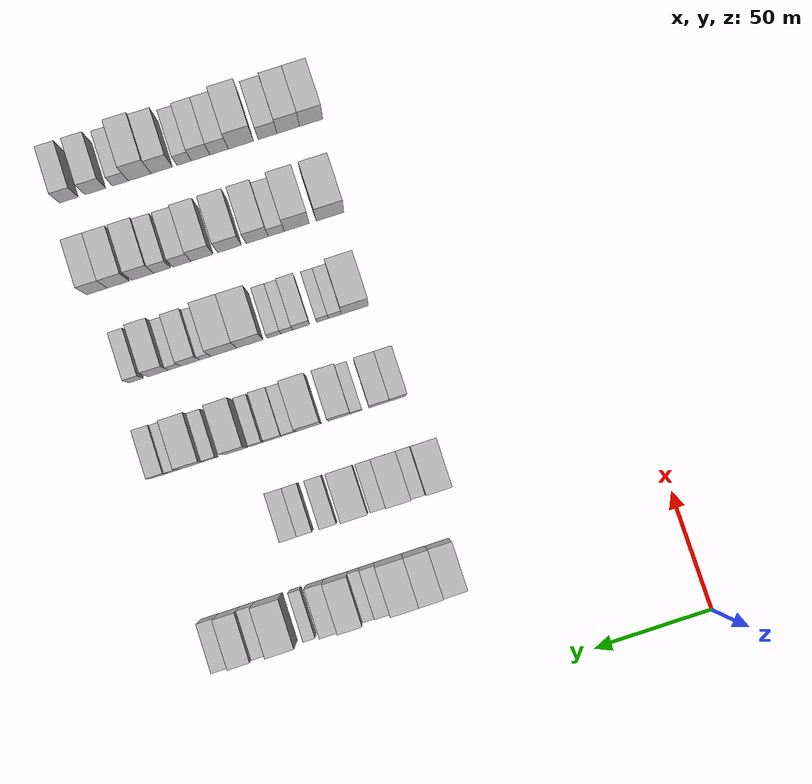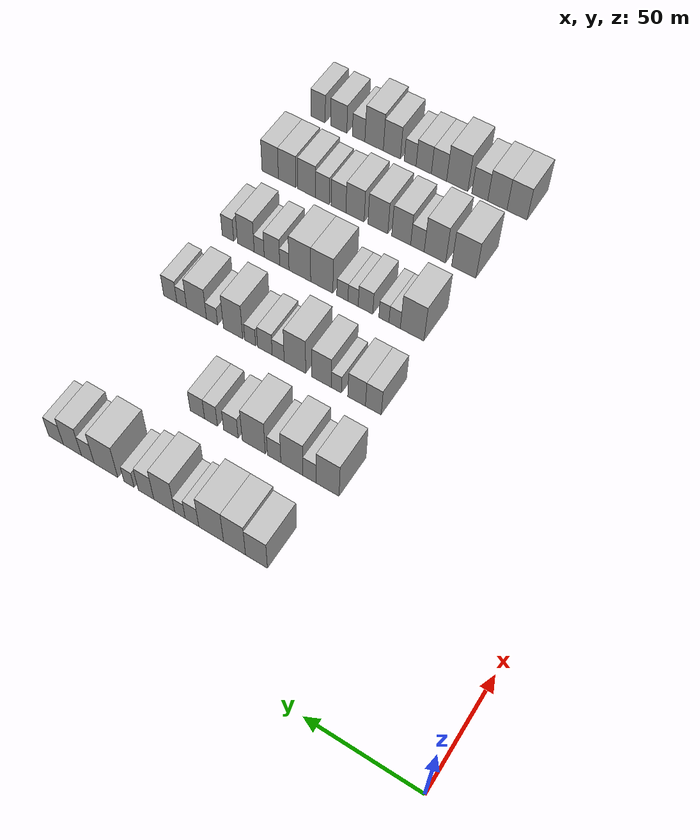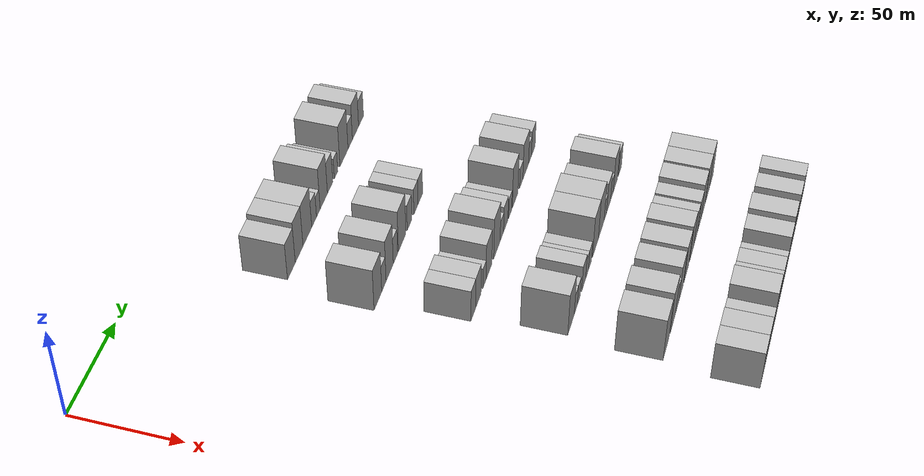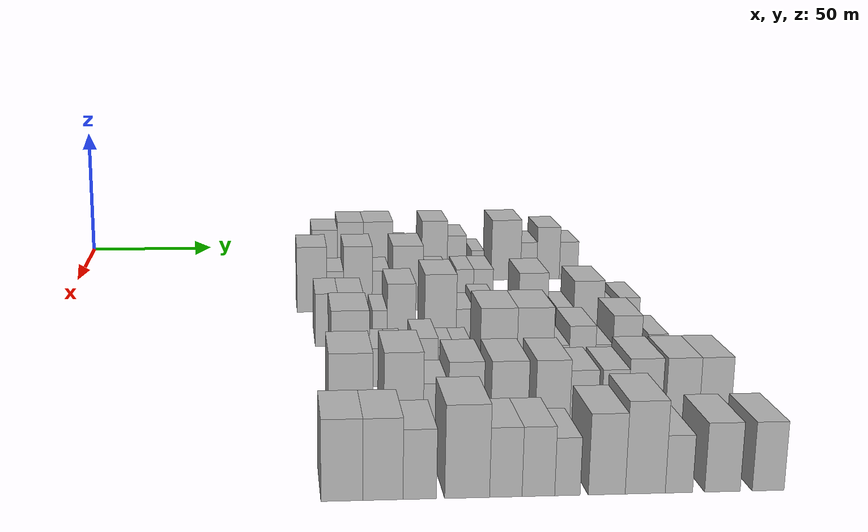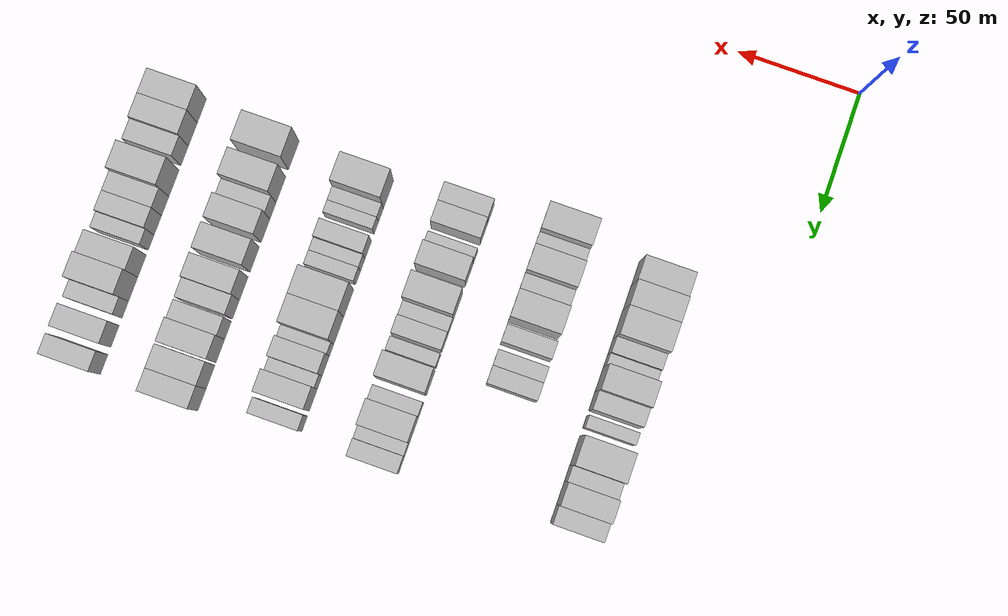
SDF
<sdf version="1.6">
 <world name="default">
  <model name="building_85">
   <static>1</static>
   <pose>50.0000 96.8803 0 0.000000 0.000000 0.000000</pose>
   <link name="link">
    <pose>0 0 10.50 0 0 0</pose>
    <collision name="collision"><geometry><box><size>20.0000 9.9742 21.0000</size></box></geometry></collision>
    <visual name="visual">
     <cast_shadows>0</cast_shadows>
     <geometry><box><size>20.0000 9.9742 21.0000</size></box></geometry>
     <material>
      <script>
       <uri>model://HANNAS_wall/materials/scripts</uri>
       <uri>model://HANNAS_wall/materials/textures</uri>
       <name>vrc/HANNAS_wall</name>
      </script>
     </material>
    </visual>
   </link>
  </model>
  <model name="building_86">
   <static>1</static>
   <pose>50.0000 106.9199 0 0.000000 0.000000 0.000000</pose>
   <link name="link">
    <pose>0 0 12.00 0 0 0</pose>
    <collision name="collision"><geometry><box><size>20.0000 10.1050 24.0000</size></box></geometry></collision>
    <visual name="visual">
     <cast_shadows>0</cast_shadows>
     <geometry><box><size>20.0000 10.1050 24.0000</size></box></geometry>
     <material>
      <script>
       <uri>model://HANNAS_wall/materials/scripts</uri>
       <uri>model://HANNAS_wall/materials/textures</uri>
       <name>vrc/HANNAS_wall</name>
      </script>
     </material>
    </visual>
   </link>
  </model>
  <model name="building_87">
   <static>1</static>
   <pose>50.0000 117.7359 0 0.000000 0.000000 0.000000</pose>
   <link name="link">
    <pose>0 0 12.00 0 0 0</pose>
    <collision name="collision"><geometry><box><size>20.0000 11.5272 24.0000</size></box></geometry></collision>
    <visual name="visual">
     <cast_shadows>0</cast_shadows>
     <geometry><box><size>20.0000 11.5272 24.0000</size></box></geometry>
     <material>
      <script>
       <uri>model://HANNAS_wall/materials/scripts</uri>
       <uri>model://HANNAS_wall/materials/textures</uri>
       <name>vrc/HANNAS_wall</name>
      </script>
     </material>
    </visual>
   </link>
  </model>
  <model name="building_88">
   <static>1</static>
   <pose>50.0000 126.7029 0 0.000000 0.000000 0.000000</pose>
   <link name="link">
    <pose>0 0 7.50 0 0 0</pose>
    <collision name="collision"><geometry><box><size>20.0000 6.4067 15.0000</size></box></geometry></collision>
    <visual name="visual">
     <cast_shadows>0</cast_shadows>
     <geometry><box><size>20.0000 6.4067 15.0000</size></box></geometry>
     <material>
      <script>
       <uri>model://HANNAS_wall/materials/scripts</uri>
       <uri>model://HANNAS_wall/materials/textures</uri>
       <name>vrc/HANNAS_wall</name>
      </script>
     </material>
    </visual>
   </link>
  </model>
  <model name="building_89">
   <static>1</static>
   <pose>50.0000 132.3894 0 0.000000 0.000000 0.000000</pose>
   <link name="link">
    <pose>0 0 6.00 0 0 0</pose>
    <collision name="collision"><geometry><box><size>20.0000 4.9663 12.0000</size></box></geometry></collision>
    <visual name="visual">
     <cast_shadows>0</cast_shadows>
     <geometry><box><size>20.0000 4.9663 12.0000</size></box></geometry>
     <material>
      <script>
       <uri>model://HANNAS_wall/materials/scripts</uri>
       <uri>model://HANNAS_wall/materials/textures</uri>
       <name>vrc/HANNAS_wall</name>
      </script>
     </material>
    </visual>
   </link>
  </model>
  <model name="building_90">
   <static>1</static>
   <pose>50.0000 139.8823 0 0.000000 0.000000 0.000000</pose>
   <link name="link">
    <pose>0 0 12.00 0 0 0</pose>
    <collision name="collision"><geometry><box><size>20.0000 10.0195 24.0000</size></box></geometry></collision>
    <visual name="visual">
     <cast_shadows>0</cast_shadows>
     <geometry><box><size>20.0000 10.0195 24.0000</size></box></geometry>
     <material>
      <script>
       <uri>model://HANNAS_wall/materials/scripts</uri>
       <uri>model://HANNAS_wall/materials/textures</uri>
       <name>vrc/HANNAS_wall</name>
      </script>
     </material>
    </visual>
   </link>
  </model>
  <model name="building_91">
   <static>1</static>
   <pose>50.0000 148.6498 0 0.000000 0.000000 0.000000</pose>
   <link name="link">
    <pose>0 0 9.00 0 0 0</pose>
    <collision name="collision"><geometry><box><size>20.0000 7.5154 18.0000</size></box></geometry></collision>
    <visual name="visual">
     <cast_shadows>0</cast_shadows>
     <geometry><box><size>20.0000 7.5154 18.0000</size></box></geometry>
     <material>
      <script>
       <uri>model://HANNAS_wall/materials/scripts</uri>
       <uri>model://HANNAS_wall/materials/textures</uri>
       <name>vrc/HANNAS_wall</name>
      </script>
     </material>
    </visual>
   </link>
  </model>
  <model name="building_92">
   <static>1</static>
   <pose>50.0000 156.8911 0 0.000000 0.000000 0.000000</pose>
   <link name="link">
    <pose>0 0 6.00 0 0 0</pose>
    <collision name="collision"><geometry><box><size>20.0000 4.9671 12.0000</size></box></geometry></collision>
    <visual name="visual">
     <cast_shadows>0</cast_shadows>
     <geometry><box><size>20.0000 4.9671 12.0000</size></box></geometry>
     <material>
      <script>
       <uri>model://HANNAS_wall/materials/scripts</uri>
       <uri>model://HANNAS_wall/materials/textures</uri>
       <name>vrc/HANNAS_wall</name>
      </script>
     </material>
    </visual>
   </link>
  </model>
  <model name="building_93">
   <static>1</static>
   <pose>50.0000 168.2172 0 0.000000 0.000000 0.000000</pose>
   <link name="link">
    <pose>0 0 12.00 0 0 0</pose>
    <collision name="collision"><geometry><box><size>20.0000 11.6851 24.0000</size></box></geometry></collision>
    <visual name="visual">
     <cast_shadows>0</cast_shadows>
     <geometry><box><size>20.0000 11.6851 24.0000</size></box></geometry>
     <material>
      <script>
       <uri>model://HANNAS_wall/materials/scripts</uri>
       <uri>model://HANNAS_wall/materials/textures</uri>
       <name>vrc/HANNAS_wall</name>
      </script>
     </material>
    </visual>
   </link>
  </model>
  <model name="building_94">
   <static>1</static>
   <pose>50.0000 177.2418 0 0.000000 0.000000 0.000000</pose>
   <link name="link">
    <pose>0 0 7.50 0 0 0</pose>
    <collision name="collision"><geometry><box><size>20.0000 6.3640 15.0000</size></box></geometry></collision>
    <visual name="visual">
     <cast_shadows>0</cast_shadows>
     <geometry><box><size>20.0000 6.3640 15.0000</size></box></geometry>
     <material>
      <script>
       <uri>model://HANNAS_wall/materials/scripts</uri>
       <uri>model://HANNAS_wall/materials/textures</uri>
       <name>vrc/HANNAS_wall</name>
      </script>
     </material>
    </visual>
   </link>
  </model>
  <model name="building_95">
   <static>1</static>
   <pose>50.0000 184.9630 0 0.000000 0.000000 0.000000</pose>
   <link name="link">
    <pose>0 0 10.50 0 0 0</pose>
    <collision name="collision"><geometry><box><size>20.0000 9.0785 21.0000</size></box></geometry></collision>
    <visual name="visual">
     <cast_shadows>0</cast_shadows>
     <geometry><box><size>20.0000 9.0785 21.0000</size></box></geometry>
     <material>
      <script>
       <uri>model://HANNAS_wall/materials/scripts</uri>
       <uri>model://HANNAS_wall/materials/textures</uri>
       <name>vrc/HANNAS_wall</name>
      </script>
     </material>
    </visual>
   </link>
  </model>
  <model name="building_96">
   <static>1</static>
   <pose>50.0000 193.1773 0 0.000000 0.000000 0.000000</pose>
   <link name="link">
    <pose>0 0 7.50 0 0 0</pose>
    <collision name="collision"><geometry><box><size>20.0000 7.3500 15.0000</size></box></geometry></collision>
    <visual name="visual">
     <cast_shadows>0</cast_shadows>
     <geometry><box><size>20.0000 7.3500 15.0000</size></box></geometry>
     <material>
      <script>
       <uri>model://HANNAS_wall/materials/scripts</uri>
       <uri>model://HANNAS_wall/materials/textures</uri>
       <name>vrc/HANNAS_wall</name>
      </script>
     </material>
    </visual>
   </link>
  </model>
  <model name="building_221">
   <static>1</static>
   <pose>90.0000 90.5699 0 0.000000 0.000000 0.000000</pose>
   <link name="link">
    <pose>0 0 12.00 0 0 0</pose>
    <collision name="collision"><geometry><box><size>20.0000 10.6653 24.0000</size></box></geometry></collision>
    <visual name="visual">
     <cast_shadows>0</cast_shadows>
     <geometry><box><size>20.0000 10.6653 24.0000</size></box></geometry>
     <material>
      <script>
       <uri>model://HANNAS_wall/materials/scripts</uri>
       <uri>model://HANNAS_wall/materials/textures</uri>
       <name>vrc/HANNAS_wall</name>
      </script>
     </material>
    </visual>
   </link>
  </model>
  <model name="building_222">
   <static>1</static>
   <pose>90.0000 98.9464 0 0.000000 0.000000 0.000000</pose>
   <link name="link">
    <pose>0 0 7.50 0 0 0</pose>
    <collision name="collision"><geometry><box><size>20.0000 6.0877 15.0000</size></box></geometry></collision>
    <visual name="visual">
     <cast_shadows>0</cast_shadows>
     <geometry><box><size>20.0000 6.0877 15.0000</size></box></geometry>
     <material>
      <script>
       <uri>model://HANNAS_wall/materials/scripts</uri>
       <uri>model://HANNAS_wall/materials/textures</uri>
       <name>vrc/HANNAS_wall</name>
      </script>
     </material>
    </visual>
   </link>
  </model>
  <model name="building_223">
   <static>1</static>
   <pose>90.0000 107.1614 0 0.000000 0.000000 0.000000</pose>
   <link name="link">
    <pose>0 0 12.00 0 0 0</pose>
    <collision name="collision"><geometry><box><size>20.0000 10.3423 24.0000</size></box></geometry></collision>
    <visual name="visual">
     <cast_shadows>0</cast_shadows>
     <geometry><box><size>20.0000 10.3423 24.0000</size></box></geometry>
     <material>
      <script>
       <uri>model://HANNAS_wall/materials/scripts</uri>
       <uri>model://HANNAS_wall/materials/textures</uri>
       <name>vrc/HANNAS_wall</name>
      </script>
     </material>
    </visual>
   </link>
  </model>
  <model name="building_224">
   <static>1</static>
   <pose>90.0000 115.5110 0 0.000000 0.000000 0.000000</pose>
   <link name="link">
    <pose>0 0 7.50 0 0 0</pose>
    <collision name="collision"><geometry><box><size>20.0000 6.3569 15.0000</size></box></geometry></collision>
    <visual name="visual">
     <cast_shadows>0</cast_shadows>
     <geometry><box><size>20.0000 6.3569 15.0000</size></box></geometry>
     <material>
      <script>
       <uri>model://HANNAS_wall/materials/scripts</uri>
       <uri>model://HANNAS_wall/materials/textures</uri>
       <name>vrc/HANNAS_wall</name>
      </script>
     </material>
    </visual>
   </link>
  </model>
  <model name="building_225">
   <static>1</static>
   <pose>90.0000 125.2080 0 0.000000 0.000000 0.000000</pose>
   <link name="link">
    <pose>0 0 12.00 0 0 0</pose>
    <collision name="collision"><geometry><box><size>20.0000 11.0372 24.0000</size></box></geometry></collision>
    <visual name="visual">
     <cast_shadows>0</cast_shadows>
     <geometry><box><size>20.0000 11.0372 24.0000</size></box></geometry>
     <material>
      <script>
       <uri>model://HANNAS_wall/materials/scripts</uri>
       <uri>model://HANNAS_wall/materials/textures</uri>
       <name>vrc/HANNAS_wall</name>
      </script>
     </material>
    </visual>
   </link>
  </model>
  <model name="building_226">
   <static>1</static>
   <pose>90.0000 136.2532 0 0.000000 0.000000 0.000000</pose>
   <link name="link">
    <pose>0 0 7.50 0 0 0</pose>
    <collision name="collision"><geometry><box><size>20.0000 7.0531 15.0000</size></box></geometry></collision>
    <visual name="visual">
     <cast_shadows>0</cast_shadows>
     <geometry><box><size>20.0000 7.0531 15.0000</size></box></geometry>
     <material>
      <script>
       <uri>model://HANNAS_wall/materials/scripts</uri>
       <uri>model://HANNAS_wall/materials/textures</uri>
       <name>vrc/HANNAS_wall</name>
      </script>
     </material>
    </visual>
   </link>
  </model>
  <model name="building_227">
   <static>1</static>
   <pose>90.0000 145.9290 0 0.000000 0.000000 0.000000</pose>
   <link name="link">
    <pose>0 0 7.50 0 0 0</pose>
    <collision name="collision"><geometry><box><size>20.0000 6.2985 15.0000</size></box></geometry></collision>
    <visual name="visual">
     <cast_shadows>0</cast_shadows>
     <geometry><box><size>20.0000 6.2985 15.0000</size></box></geometry>
     <material>
      <script>
       <uri>model://HANNAS_wall/materials/scripts</uri>
       <uri>model://HANNAS_wall/materials/textures</uri>
       <name>vrc/HANNAS_wall</name>
      </script>
     </material>
    </visual>
   </link>
  </model>
  <model name="building_228">
   <static>1</static>
   <pose>90.0000 152.6387 0 0.000000 0.000000 0.000000</pose>
   <link name="link">
    <pose>0 0 7.50 0 0 0</pose>
    <collision name="collision"><geometry><box><size>20.0000 7.1210 15.0000</size></box></geometry></collision>
    <visual name="visual">
     <cast_shadows>0</cast_shadows>
     <geometry><box><size>20.0000 7.1210 15.0000</size></box></geometry>
     <material>
      <script>
       <uri>model://HANNAS_wall/materials/scripts</uri>
       <uri>model://HANNAS_wall/materials/textures</uri>
       <name>vrc/HANNAS_wall</name>
      </script>
     </material>
    </visual>
   </link>
  </model>
  <model name="building_356">
   <static>1</static>
   <pose>130.0000 94.0886 0 0.000000 0.000000 0.000000</pose>
   <link name="link">
    <pose>0 0 9.00 0 0 0</pose>
    <collision name="collision"><geometry><box><size>20.0000 7.4451 18.0000</size></box></geometry></collision>
    <visual name="visual">
     <cast_shadows>0</cast_shadows>
     <geometry><box><size>20.0000 7.4451 18.0000</size></box></geometry>
     <material>
      <script>
       <uri>model://HANNAS_wall/materials/scripts</uri>
       <uri>model://HANNAS_wall/materials/textures</uri>
       <name>vrc/HANNAS_wall</name>
      </script>
     </material>
    </visual>
   </link>
  </model>
  <model name="building_357">
   <static>1</static>
   <pose>130.0000 102.0304 0 0.000000 0.000000 0.000000</pose>
   <link name="link">
    <pose>0 0 9.00 0 0 0</pose>
    <collision name="collision"><geometry><box><size>20.0000 8.4385 18.0000</size></box></geometry></collision>
    <visual name="visual">
     <cast_shadows>0</cast_shadows>
     <geometry><box><size>20.0000 8.4385 18.0000</size></box></geometry>
     <material>
      <script>
       <uri>model://HANNAS_wall/materials/scripts</uri>
       <uri>model://HANNAS_wall/materials/textures</uri>
       <name>vrc/HANNAS_wall</name>
      </script>
     </material>
    </visual>
   </link>
  </model>
  <model name="building_358">
   <static>1</static>
   <pose>130.0000 111.7336 0 0.000000 0.000000 0.000000</pose>
   <link name="link">
    <pose>0 0 6.00 0 0 0</pose>
    <collision name="collision"><geometry><box><size>20.0000 4.9679 12.0000</size></box></geometry></collision>
    <visual name="visual">
     <cast_shadows>0</cast_shadows>
     <geometry><box><size>20.0000 4.9679 12.0000</size></box></geometry>
     <material>
      <script>
       <uri>model://HANNAS_wall/materials/scripts</uri>
       <uri>model://HANNAS_wall/materials/textures</uri>
       <name>vrc/HANNAS_wall</name>
      </script>
     </material>
    </visual>
   </link>
  </model>
  <model name="building_359">
   <static>1</static>
   <pose>130.0000 118.9102 0 0.000000 0.000000 0.000000</pose>
   <link name="link">
    <pose>0 0 10.50 0 0 0</pose>
    <collision name="collision"><geometry><box><size>20.0000 9.3853 21.0000</size></box></geometry></collision>
    <visual name="visual">
     <cast_shadows>0</cast_shadows>
     <geometry><box><size>20.0000 9.3853 21.0000</size></box></geometry>
     <material>
      <script>
       <uri>model://HANNAS_wall/materials/scripts</uri>
       <uri>model://HANNAS_wall/materials/textures</uri>
       <name>vrc/HANNAS_wall</name>
      </script>
     </material>
    </visual>
   </link>
  </model>
  <model name="building_360">
   <static>1</static>
   <pose>130.0000 131.8942 0 0.000000 0.000000 0.000000</pose>
   <link name="link">
    <pose>0 0 12.00 0 0 0</pose>
    <collision name="collision"><geometry><box><size>20.0000 10.5828 24.0000</size></box></geometry></collision>
    <visual name="visual">
     <cast_shadows>0</cast_shadows>
     <geometry><box><size>20.0000 10.5828 24.0000</size></box></geometry>
     <material>
      <script>
       <uri>model://HANNAS_wall/materials/scripts</uri>
       <uri>model://HANNAS_wall/materials/textures</uri>
       <name>vrc/HANNAS_wall</name>
      </script>
     </material>
    </visual>
   </link>
  </model>
  <model name="building_361">
   <static>1</static>
   <pose>130.0000 140.1540 0 0.000000 0.000000 0.000000</pose>
   <link name="link">
    <pose>0 0 6.00 0 0 0</pose>
    <collision name="collision"><geometry><box><size>20.0000 5.9368 12.0000</size></box></geometry></collision>
    <visual name="visual">
     <cast_shadows>0</cast_shadows>
     <geometry><box><size>20.0000 5.9368 12.0000</size></box></geometry>
     <material>
      <script>
       <uri>model://HANNAS_wall/materials/scripts</uri>
       <uri>model://HANNAS_wall/materials/textures</uri>
       <name>vrc/HANNAS_wall</name>
      </script>
     </material>
    </visual>
   </link>
  </model>
  <model name="building_362">
   <static>1</static>
   <pose>130.0000 146.7632 0 0.000000 0.000000 0.000000</pose>
   <link name="link">
    <pose>0 0 7.50 0 0 0</pose>
    <collision name="collision"><geometry><box><size>20.0000 7.2816 15.0000</size></box></geometry></collision>
    <visual name="visual">
     <cast_shadows>0</cast_shadows>
     <geometry><box><size>20.0000 7.2816 15.0000</size></box></geometry>
     <material>
      <script>
       <uri>model://HANNAS_wall/materials/scripts</uri>
       <uri>model://HANNAS_wall/materials/textures</uri>
       <name>vrc/HANNAS_wall</name>
      </script>
     </material>
    </visual>
   </link>
  </model>
  <model name="building_363">
   <static>1</static>
   <pose>130.0000 154.1419 0 0.000000 0.000000 0.000000</pose>
   <link name="link">
    <pose>0 0 6.00 0 0 0</pose>
    <collision name="collision"><geometry><box><size>20.0000 5.4757 12.0000</size></box></geometry></collision>
    <visual name="visual">
     <cast_shadows>0</cast_shadows>
     <geometry><box><size>20.0000 5.4757 12.0000</size></box></geometry>
     <material>
      <script>
       <uri>model://HANNAS_wall/materials/scripts</uri>
       <uri>model://HANNAS_wall/materials/textures</uri>
       <name>vrc/HANNAS_wall</name>
      </script>
     </material>
    </visual>
   </link>
  </model>
  <model name="building_364">
   <static>1</static>
   <pose>130.0000 162.7864 0 0.000000 0.000000 0.000000</pose>
   <link name="link">
    <pose>0 0 12.00 0 0 0</pose>
    <collision name="collision"><geometry><box><size>20.0000 9.8133 24.0000</size></box></geometry></collision>
    <visual name="visual">
     <cast_shadows>0</cast_shadows>
     <geometry><box><size>20.0000 9.8133 24.0000</size></box></geometry>
     <material>
      <script>
       <uri>model://HANNAS_wall/materials/scripts</uri>
       <uri>model://HANNAS_wall/materials/textures</uri>
       <name>vrc/HANNAS_wall</name>
      </script>
     </material>
    </visual>
   </link>
  </model>
  <model name="building_365">
   <static>1</static>
   <pose>130.0000 173.5572 0 0.000000 0.000000 0.000000</pose>
   <link name="link">
    <pose>0 0 6.00 0 0 0</pose>
    <collision name="collision"><geometry><box><size>20.0000 5.7284 12.0000</size></box></geometry></collision>
    <visual name="visual">
     <cast_shadows>0</cast_shadows>
     <geometry><box><size>20.0000 5.7284 12.0000</size></box></geometry>
     <material>
      <script>
       <uri>model://HANNAS_wall/materials/scripts</uri>
       <uri>model://HANNAS_wall/materials/textures</uri>
       <name>vrc/HANNAS_wall</name>
      </script>
     </material>
    </visual>
   </link>
  </model>
  <model name="building_366">
   <static>1</static>
   <pose>130.0000 181.5387 0 0.000000 0.000000 0.000000</pose>
   <link name="link">
    <pose>0 0 10.50 0 0 0</pose>
    <collision name="collision"><geometry><box><size>20.0000 10.2345 21.0000</size></box></geometry></collision>
    <visual name="visual">
     <cast_shadows>0</cast_shadows>
     <geometry><box><size>20.0000 10.2345 21.0000</size></box></geometry>
     <material>
      <script>
       <uri>model://HANNAS_wall/materials/scripts</uri>
       <uri>model://HANNAS_wall/materials/textures</uri>
       <name>vrc/HANNAS_wall</name>
      </script>
     </material>
    </visual>
   </link>
  </model>
  <model name="building_367">
   <static>1</static>
   <pose>130.0000 189.2254 0 0.000000 0.000000 0.000000</pose>
   <link name="link">
    <pose>0 0 6.00 0 0 0</pose>
    <collision name="collision"><geometry><box><size>20.0000 5.1389 12.0000</size></box></geometry></collision>
    <visual name="visual">
     <cast_shadows>0</cast_shadows>
     <geometry><box><size>20.0000 5.1389 12.0000</size></box></geometry>
     <material>
      <script>
       <uri>model://HANNAS_wall/materials/scripts</uri>
       <uri>model://HANNAS_wall/materials/textures</uri>
       <name>vrc/HANNAS_wall</name>
      </script>
     </material>
    </visual>
   </link>
  </model>
  <model name="building_368">
   <static>1</static>
   <pose>130.0000 195.2566 0 0.000000 0.000000 0.000000</pose>
   <link name="link">
    <pose>0 0 7.50 0 0 0</pose>
    <collision name="collision"><geometry><box><size>20.0000 6.9237 15.0000</size></box></geometry></collision>
    <visual name="visual">
     <cast_shadows>0</cast_shadows>
     <geometry><box><size>20.0000 6.9237 15.0000</size></box></geometry>
     <material>
      <script>
       <uri>model://HANNAS_wall/materials/scripts</uri>
       <uri>model://HANNAS_wall/materials/textures</uri>
       <name>vrc/HANNAS_wall</name>
      </script>
     </material>
    </visual>
   </link>
  </model>
  <model name="building_496">
   <static>1</static>
   <pose>170.0000 99.4663 0 0.000000 0.000000 0.000000</pose>
   <link name="link">
    <pose>0 0 12.00 0 0 0</pose>
    <collision name="collision"><geometry><box><size>20.0000 11.4670 24.0000</size></box></geometry></collision>
    <visual name="visual">
     <cast_shadows>0</cast_shadows>
     <geometry><box><size>20.0000 11.4670 24.0000</size></box></geometry>
     <material>
      <script>
       <uri>model://HANNAS_wall/materials/scripts</uri>
       <uri>model://HANNAS_wall/materials/textures</uri>
       <name>vrc/HANNAS_wall</name>
      </script>
     </material>
    </visual>
   </link>
  </model>
  <model name="building_497">
   <static>1</static>
   <pose>170.0000 107.9846 0 0.000000 0.000000 0.000000</pose>
   <link name="link">
    <pose>0 0 6.00 0 0 0</pose>
    <collision name="collision"><geometry><box><size>20.0000 5.5696 12.0000</size></box></geometry></collision>
    <visual name="visual">
     <cast_shadows>0</cast_shadows>
     <geometry><box><size>20.0000 5.5696 12.0000</size></box></geometry>
     <material>
      <script>
       <uri>model://HANNAS_wall/materials/scripts</uri>
       <uri>model://HANNAS_wall/materials/textures</uri>
       <name>vrc/HANNAS_wall</name>
      </script>
     </material>
    </visual>
   </link>
  </model>
  <model name="building_498">
   <static>1</static>
   <pose>170.0000 113.2544 0 0.000000 0.000000 0.000000</pose>
   <link name="link">
    <pose>0 0 6.00 0 0 0</pose>
    <collision name="collision"><geometry><box><size>20.0000 4.9700 12.0000</size></box></geometry></collision>
    <visual name="visual">
     <cast_shadows>0</cast_shadows>
     <geometry><box><size>20.0000 4.9700 12.0000</size></box></geometry>
     <material>
      <script>
       <uri>model://HANNAS_wall/materials/scripts</uri>
       <uri>model://HANNAS_wall/materials/textures</uri>
       <name>vrc/HANNAS_wall</name>
      </script>
     </material>
    </visual>
   </link>
  </model>
  <model name="building_499">
   <static>1</static>
   <pose>170.0000 122.3522 0 0.000000 0.000000 0.000000</pose>
   <link name="link">
    <pose>0 0 7.50 0 0 0</pose>
    <collision name="collision"><geometry><box><size>20.0000 7.2255 15.0000</size></box></geometry></collision>
    <visual name="visual">
     <cast_shadows>0</cast_shadows>
     <geometry><box><size>20.0000 7.2255 15.0000</size></box></geometry>
     <material>
      <script>
       <uri>model://HANNAS_wall/materials/scripts</uri>
       <uri>model://HANNAS_wall/materials/textures</uri>
       <name>vrc/HANNAS_wall</name>
      </script>
     </material>
    </visual>
   </link>
  </model>
  <model name="building_500">
   <static>1</static>
   <pose>170.0000 128.5299 0 0.000000 0.000000 0.000000</pose>
   <link name="link">
    <pose>0 0 6.00 0 0 0</pose>
    <collision name="collision"><geometry><box><size>20.0000 5.1300 12.0000</size></box></geometry></collision>
    <visual name="visual">
     <cast_shadows>0</cast_shadows>
     <geometry><box><size>20.0000 5.1300 12.0000</size></box></geometry>
     <material>
      <script>
       <uri>model://HANNAS_wall/materials/scripts</uri>
       <uri>model://HANNAS_wall/materials/textures</uri>
       <name>vrc/HANNAS_wall</name>
      </script>
     </material>
    </visual>
   </link>
  </model>
  <model name="building_501">
   <static>1</static>
   <pose>170.0000 133.9042 0 0.000000 0.000000 0.000000</pose>
   <link name="link">
    <pose>0 0 6.00 0 0 0</pose>
    <collision name="collision"><geometry><box><size>20.0000 5.6186 12.0000</size></box></geometry></collision>
    <visual name="visual">
     <cast_shadows>0</cast_shadows>
     <geometry><box><size>20.0000 5.6186 12.0000</size></box></geometry>
     <material>
      <script>
       <uri>model://HANNAS_wall/materials/scripts</uri>
       <uri>model://HANNAS_wall/materials/textures</uri>
       <name>vrc/HANNAS_wall</name>
      </script>
     </material>
    </visual>
   </link>
  </model>
  <model name="building_502">
   <static>1</static>
   <pose>170.0000 144.3319 0 0.000000 0.000000 0.000000</pose>
   <link name="link">
    <pose>0 0 12.00 0 0 0</pose>
    <collision name="collision"><geometry><box><size>20.0000 11.2367 24.0000</size></box></geometry></collision>
    <visual name="visual">
     <cast_shadows>0</cast_shadows>
     <geometry><box><size>20.0000 11.2367 24.0000</size></box></geometry>
     <material>
      <script>
       <uri>model://HANNAS_wall/materials/scripts</uri>
       <uri>model://HANNAS_wall/materials/textures</uri>
       <name>vrc/HANNAS_wall</name>
      </script>
     </material>
    </visual>
   </link>
  </model>
  <model name="building_503">
   <static>1</static>
   <pose>170.0000 155.5170 0 0.000000 0.000000 0.000000</pose>
   <link name="link">
    <pose>0 0 12.00 0 0 0</pose>
    <collision name="collision"><geometry><box><size>20.0000 11.1335 24.0000</size></box></geometry></collision>
    <visual name="visual">
     <cast_shadows>0</cast_shadows>
     <geometry><box><size>20.0000 11.1335 24.0000</size></box></geometry>
     <material>
      <script>
       <uri>model://HANNAS_wall/materials/scripts</uri>
       <uri>model://HANNAS_wall/materials/textures</uri>
       <name>vrc/HANNAS_wall</name>
      </script>
     </material>
    </visual>
   </link>
  </model>
  <model name="building_504">
   <static>1</static>
   <pose>170.0000 163.4873 0 0.000000 0.000000 0.000000</pose>
   <link name="link">
    <pose>0 0 6.00 0 0 0</pose>
    <collision name="collision"><geometry><box><size>20.0000 4.8073 12.0000</size></box></geometry></collision>
    <visual name="visual">
     <cast_shadows>0</cast_shadows>
     <geometry><box><size>20.0000 4.8073 12.0000</size></box></geometry>
     <material>
      <script>
       <uri>model://HANNAS_wall/materials/scripts</uri>
       <uri>model://HANNAS_wall/materials/textures</uri>
       <name>vrc/HANNAS_wall</name>
      </script>
     </material>
    </visual>
   </link>
  </model>
  <model name="building_505">
   <static>1</static>
   <pose>170.0000 169.9224 0 0.000000 0.000000 0.000000</pose>
   <link name="link">
    <pose>0 0 9.00 0 0 0</pose>
    <collision name="collision"><geometry><box><size>20.0000 8.0628 18.0000</size></box></geometry></collision>
    <visual name="visual">
     <cast_shadows>0</cast_shadows>
     <geometry><box><size>20.0000 8.0628 18.0000</size></box></geometry>
     <material>
      <script>
       <uri>model://HANNAS_wall/materials/scripts</uri>
       <uri>model://HANNAS_wall/materials/textures</uri>
       <name>vrc/HANNAS_wall</name>
      </script>
     </material>
    </visual>
   </link>
  </model>
  <model name="building_506">
   <static>1</static>
   <pose>170.0000 176.5730 0 0.000000 0.000000 0.000000</pose>
   <link name="link">
    <pose>0 0 6.00 0 0 0</pose>
    <collision name="collision"><geometry><box><size>20.0000 5.2384 12.0000</size></box></geometry></collision>
    <visual name="visual">
     <cast_shadows>0</cast_shadows>
     <geometry><box><size>20.0000 5.2384 12.0000</size></box></geometry>
     <material>
      <script>
       <uri>model://HANNAS_wall/materials/scripts</uri>
       <uri>model://HANNAS_wall/materials/textures</uri>
       <name>vrc/HANNAS_wall</name>
      </script>
     </material>
    </visual>
   </link>
  </model>
  <model name="building_507">
   <static>1</static>
   <pose>170.0000 183.6032 0 0.000000 0.000000 0.000000</pose>
   <link name="link">
    <pose>0 0 10.50 0 0 0</pose>
    <collision name="collision"><geometry><box><size>20.0000 8.8221 21.0000</size></box></geometry></collision>
    <visual name="visual">
     <cast_shadows>0</cast_shadows>
     <geometry><box><size>20.0000 8.8221 21.0000</size></box></geometry>
     <material>
      <script>
       <uri>model://HANNAS_wall/materials/scripts</uri>
       <uri>model://HANNAS_wall/materials/textures</uri>
       <name>vrc/HANNAS_wall</name>
      </script>
     </material>
    </visual>
   </link>
  </model>
  <model name="building_508">
   <static>1</static>
   <pose>170.0000 193.0877 0 0.000000 0.000000 0.000000</pose>
   <link name="link">
    <pose>0 0 7.50 0 0 0</pose>
    <collision name="collision"><geometry><box><size>20.0000 6.1469 15.0000</size></box></geometry></collision>
    <visual name="visual">
     <cast_shadows>0</cast_shadows>
     <geometry><box><size>20.0000 6.1469 15.0000</size></box></geometry>
     <material>
      <script>
       <uri>model://HANNAS_wall/materials/scripts</uri>
       <uri>model://HANNAS_wall/materials/textures</uri>
       <name>vrc/HANNAS_wall</name>
      </script>
     </material>
    </visual>
   </link>
  </model>
  <model name="building_635">
   <static>1</static>
   <pose>210.0000 97.1591 0 0.000000 0.000000 0.000000</pose>
   <link name="link">
    <pose>0 0 12.00 0 0 0</pose>
    <collision name="collision"><geometry><box><size>20.0000 11.9744 24.0000</size></box></geometry></collision>
    <visual name="visual">
     <cast_shadows>0</cast_shadows>
     <geometry><box><size>20.0000 11.9744 24.0000</size></box></geometry>
     <material>
      <script>
       <uri>model://HANNAS_wall/materials/scripts</uri>
       <uri>model://HANNAS_wall/materials/textures</uri>
       <name>vrc/HANNAS_wall</name>
      </script>
     </material>
    </visual>
   </link>
  </model>
  <model name="building_636">
   <static>1</static>
   <pose>210.0000 111.5221 0 0.000000 0.000000 0.000000</pose>
   <link name="link">
    <pose>0 0 12.00 0 0 0</pose>
    <collision name="collision"><geometry><box><size>20.0000 10.7516 24.0000</size></box></geometry></collision>
    <visual name="visual">
     <cast_shadows>0</cast_shadows>
     <geometry><box><size>20.0000 10.7516 24.0000</size></box></geometry>
     <material>
      <script>
       <uri>model://HANNAS_wall/materials/scripts</uri>
       <uri>model://HANNAS_wall/materials/textures</uri>
       <name>vrc/HANNAS_wall</name>
      </script>
     </material>
    </visual>
   </link>
  </model>
  <model name="building_637">
   <static>1</static>
   <pose>210.0000 120.3129 0 0.000000 0.000000 0.000000</pose>
   <link name="link">
    <pose>0 0 7.50 0 0 0</pose>
    <collision name="collision"><geometry><box><size>20.0000 6.8299 15.0000</size></box></geometry></collision>
    <visual name="visual">
     <cast_shadows>0</cast_shadows>
     <geometry><box><size>20.0000 6.8299 15.0000</size></box></geometry>
     <material>
      <script>
       <uri>model://HANNAS_wall/materials/scripts</uri>
       <uri>model://HANNAS_wall/materials/textures</uri>
       <name>vrc/HANNAS_wall</name>
      </script>
     </material>
    </visual>
   </link>
  </model>
  <model name="building_638">
   <static>1</static>
   <pose>210.0000 128.5631 0 0.000000 0.000000 0.000000</pose>
   <link name="link">
    <pose>0 0 10.50 0 0 0</pose>
    <collision name="collision"><geometry><box><size>20.0000 9.6705 21.0000</size></box></geometry></collision>
    <visual name="visual">
     <cast_shadows>0</cast_shadows>
     <geometry><box><size>20.0000 9.6705 21.0000</size></box></geometry>
     <material>
      <script>
       <uri>model://HANNAS_wall/materials/scripts</uri>
       <uri>model://HANNAS_wall/materials/textures</uri>
       <name>vrc/HANNAS_wall</name>
      </script>
     </material>
    </visual>
   </link>
  </model>
  <model name="building_639">
   <static>1</static>
   <pose>210.0000 140.5146 0 0.000000 0.000000 0.000000</pose>
   <link name="link">
    <pose>0 0 10.50 0 0 0</pose>
    <collision name="collision"><geometry><box><size>20.0000 10.2325 21.0000</size></box></geometry></collision>
    <visual name="visual">
     <cast_shadows>0</cast_shadows>
     <geometry><box><size>20.0000 10.2325 21.0000</size></box></geometry>
     <material>
      <script>
       <uri>model://HANNAS_wall/materials/scripts</uri>
       <uri>model://HANNAS_wall/materials/textures</uri>
       <name>vrc/HANNAS_wall</name>
      </script>
     </material>
    </visual>
   </link>
  </model>
  <model name="building_640">
   <static>1</static>
   <pose>210.0000 152.3866 0 0.000000 0.000000 0.000000</pose>
   <link name="link">
    <pose>0 0 10.50 0 0 0</pose>
    <collision name="collision"><geometry><box><size>20.0000 9.5115 21.0000</size></box></geometry></collision>
    <visual name="visual">
     <cast_shadows>0</cast_shadows>
     <geometry><box><size>20.0000 9.5115 21.0000</size></box></geometry>
     <material>
      <script>
       <uri>model://HANNAS_wall/materials/scripts</uri>
       <uri>model://HANNAS_wall/materials/textures</uri>
       <name>vrc/HANNAS_wall</name>
      </script>
     </material>
    </visual>
   </link>
  </model>
  <model name="building_641">
   <static>1</static>
   <pose>210.0000 161.0190 0 0.000000 0.000000 0.000000</pose>
   <link name="link">
    <pose>0 0 9.00 0 0 0</pose>
    <collision name="collision"><geometry><box><size>20.0000 7.7534 18.0000</size></box></geometry></collision>
    <visual name="visual">
     <cast_shadows>0</cast_shadows>
     <geometry><box><size>20.0000 7.7534 18.0000</size></box></geometry>
     <material>
      <script>
       <uri>model://HANNAS_wall/materials/scripts</uri>
       <uri>model://HANNAS_wall/materials/textures</uri>
       <name>vrc/HANNAS_wall</name>
      </script>
     </material>
    </visual>
   </link>
  </model>
  <model name="building_642">
   <static>1</static>
   <pose>210.0000 169.5728 0 0.000000 0.000000 0.000000</pose>
   <link name="link">
    <pose>0 0 9.00 0 0 0</pose>
    <collision name="collision"><geometry><box><size>20.0000 7.3540 18.0000</size></box></geometry></collision>
    <visual name="visual">
     <cast_shadows>0</cast_shadows>
     <geometry><box><size>20.0000 7.3540 18.0000</size></box></geometry>
     <material>
      <script>
       <uri>model://HANNAS_wall/materials/scripts</uri>
       <uri>model://HANNAS_wall/materials/textures</uri>
       <name>vrc/HANNAS_wall</name>
      </script>
     </material>
    </visual>
   </link>
  </model>
  <model name="building_643">
   <static>1</static>
   <pose>210.0000 177.9496 0 0.000000 0.000000 0.000000</pose>
   <link name="link">
    <pose>0 0 10.50 0 0 0</pose>
    <collision name="collision"><geometry><box><size>20.0000 9.3996 21.0000</size></box></geometry></collision>
    <visual name="visual">
     <cast_shadows>0</cast_shadows>
     <geometry><box><size>20.0000 9.3996 21.0000</size></box></geometry>
     <material>
      <script>
       <uri>model://HANNAS_wall/materials/scripts</uri>
       <uri>model://HANNAS_wall/materials/textures</uri>
       <name>vrc/HANNAS_wall</name>
      </script>
     </material>
    </visual>
   </link>
  </model>
  <model name="building_644">
   <static>1</static>
   <pose>210.0000 188.3682 0 0.000000 0.000000 0.000000</pose>
   <link name="link">
    <pose>0 0 10.50 0 0 0</pose>
    <collision name="collision"><geometry><box><size>20.0000 9.4377 21.0000</size></box></geometry></collision>
    <visual name="visual">
     <cast_shadows>0</cast_shadows>
     <geometry><box><size>20.0000 9.4377 21.0000</size></box></geometry>
     <material>
      <script>
       <uri>model://HANNAS_wall/materials/scripts</uri>
       <uri>model://HANNAS_wall/materials/textures</uri>
       <name>vrc/HANNAS_wall</name>
      </script>
     </material>
    </visual>
   </link>
  </model>
  <model name="building_645">
   <static>1</static>
   <pose>210.0000 197.5447 0 0.000000 0.000000 0.000000</pose>
   <link name="link">
    <pose>0 0 10.50 0 0 0</pose>
    <collision name="collision"><geometry><box><size>20.0000 8.9152 21.0000</size></box></geometry></collision>
    <visual name="visual">
     <cast_shadows>0</cast_shadows>
     <geometry><box><size>20.0000 8.9152 21.0000</size></box></geometry>
     <material>
      <script>
       <uri>model://HANNAS_wall/materials/scripts</uri>
       <uri>model://HANNAS_wall/materials/textures</uri>
       <name>vrc/HANNAS_wall</name>
      </script>
     </material>
    </visual>
   </link>
  </model>
  <model name="building_773">
   <static>1</static>
   <pose>250.0000 92.5341 0 0.000000 0.000000 0.000000</pose>
   <link name="link">
    <pose>0 0 10.50 0 0 0</pose>
    <collision name="collision"><geometry><box><size>20.0000 10.1247 21.0000</size></box></geometry></collision>
    <visual name="visual">
     <cast_shadows>0</cast_shadows>
     <geometry><box><size>20.0000 10.1247 21.0000</size></box></geometry>
     <material>
      <script>
       <uri>model://HANNAS_wall/materials/scripts</uri>
       <uri>model://HANNAS_wall/materials/textures</uri>
       <name>vrc/HANNAS_wall</name>
      </script>
     </material>
    </visual>
   </link>
  </model>
  <model name="building_774">
   <static>1</static>
   <pose>250.0000 102.4669 0 0.000000 0.000000 0.000000</pose>
   <link name="link">
    <pose>0 0 10.50 0 0 0</pose>
    <collision name="collision"><geometry><box><size>20.0000 9.7409 21.0000</size></box></geometry></collision>
    <visual name="visual">
     <cast_shadows>0</cast_shadows>
     <geometry><box><size>20.0000 9.7409 21.0000</size></box></geometry>
     <material>
      <script>
       <uri>model://HANNAS_wall/materials/scripts</uri>
       <uri>model://HANNAS_wall/materials/textures</uri>
       <name>vrc/HANNAS_wall</name>
      </script>
     </material>
    </visual>
   </link>
  </model>
  <model name="building_775">
   <static>1</static>
   <pose>250.0000 111.4206 0 0.000000 0.000000 0.000000</pose>
   <link name="link">
    <pose>0 0 9.00 0 0 0</pose>
    <collision name="collision"><geometry><box><size>20.0000 8.1664 18.0000</size></box></geometry></collision>
    <visual name="visual">
     <cast_shadows>0</cast_shadows>
     <geometry><box><size>20.0000 8.1664 18.0000</size></box></geometry>
     <material>
      <script>
       <uri>model://HANNAS_wall/materials/scripts</uri>
       <uri>model://HANNAS_wall/materials/textures</uri>
       <name>vrc/HANNAS_wall</name>
      </script>
     </material>
    </visual>
   </link>
  </model>
  <model name="building_776">
   <static>1</static>
   <pose>250.0000 122.9877 0 0.000000 0.000000 0.000000</pose>
   <link name="link">
    <pose>0 0 12.00 0 0 0</pose>
    <collision name="collision"><geometry><box><size>20.0000 10.9678 24.0000</size></box></geometry></collision>
    <visual name="visual">
     <cast_shadows>0</cast_shadows>
     <geometry><box><size>20.0000 10.9678 24.0000</size></box></geometry>
     <material>
      <script>
       <uri>model://HANNAS_wall/materials/scripts</uri>
       <uri>model://HANNAS_wall/materials/textures</uri>
       <name>vrc/HANNAS_wall</name>
      </script>
     </material>
    </visual>
   </link>
  </model>
  <model name="building_777">
   <static>1</static>
   <pose>250.0000 132.4528 0 0.000000 0.000000 0.000000</pose>
   <link name="link">
    <pose>0 0 9.00 0 0 0</pose>
    <collision name="collision"><geometry><box><size>20.0000 7.9624 18.0000</size></box></geometry></collision>
    <visual name="visual">
     <cast_shadows>0</cast_shadows>
     <geometry><box><size>20.0000 7.9624 18.0000</size></box></geometry>
     <material>
      <script>
       <uri>model://HANNAS_wall/materials/scripts</uri>
       <uri>model://HANNAS_wall/materials/textures</uri>
       <name>vrc/HANNAS_wall</name>
      </script>
     </material>
    </visual>
   </link>
  </model>
  <model name="building_778">
   <static>1</static>
   <pose>250.0000 140.4462 0 0.000000 0.000000 0.000000</pose>
   <link name="link">
    <pose>0 0 9.00 0 0 0</pose>
    <collision name="collision"><geometry><box><size>20.0000 8.0244 18.0000</size></box></geometry></collision>
    <visual name="visual">
     <cast_shadows>0</cast_shadows>
     <geometry><box><size>20.0000 8.0244 18.0000</size></box></geometry>
     <material>
      <script>
       <uri>model://HANNAS_wall/materials/scripts</uri>
       <uri>model://HANNAS_wall/materials/textures</uri>
       <name>vrc/HANNAS_wall</name>
      </script>
     </material>
    </visual>
   </link>
  </model>
  <model name="building_779">
   <static>1</static>
   <pose>250.0000 147.5966 0 0.000000 0.000000 0.000000</pose>
   <link name="link">
    <pose>0 0 7.50 0 0 0</pose>
    <collision name="collision"><geometry><box><size>20.0000 6.2766 15.0000</size></box></geometry></collision>
    <visual name="visual">
     <cast_shadows>0</cast_shadows>
     <geometry><box><size>20.0000 6.2766 15.0000</size></box></geometry>
     <material>
      <script>
       <uri>model://HANNAS_wall/materials/scripts</uri>
       <uri>model://HANNAS_wall/materials/textures</uri>
       <name>vrc/HANNAS_wall</name>
      </script>
     </material>
    </visual>
   </link>
  </model>
  <model name="building_780">
   <static>1</static>
   <pose>250.0000 157.3031 0 0.000000 0.000000 0.000000</pose>
   <link name="link">
    <pose>0 0 10.50 0 0 0</pose>
    <collision name="collision"><geometry><box><size>20.0000 9.1364 21.0000</size></box></geometry></collision>
    <visual name="visual">
     <cast_shadows>0</cast_shadows>
     <geometry><box><size>20.0000 9.1364 21.0000</size></box></geometry>
     <material>
      <script>
       <uri>model://HANNAS_wall/materials/scripts</uri>
       <uri>model://HANNAS_wall/materials/textures</uri>
       <name>vrc/HANNAS_wall</name>
      </script>
     </material>
    </visual>
   </link>
  </model>
  <model name="building_781">
   <static>1</static>
   <pose>250.0000 166.8350 0 0.000000 0.000000 0.000000</pose>
   <link name="link">
    <pose>0 0 12.00 0 0 0</pose>
    <collision name="collision"><geometry><box><size>20.0000 9.9274 24.0000</size></box></geometry></collision>
    <visual name="visual">
     <cast_shadows>0</cast_shadows>
     <geometry><box><size>20.0000 9.9274 24.0000</size></box></geometry>
     <material>
      <script>
       <uri>model://HANNAS_wall/materials/scripts</uri>
       <uri>model://HANNAS_wall/materials/textures</uri>
       <name>vrc/HANNAS_wall</name>
      </script>
     </material>
    </visual>
   </link>
  </model>
  <model name="building_782">
   <static>1</static>
   <pose>250.0000 175.2085 0 0.000000 0.000000 0.000000</pose>
   <link name="link">
    <pose>0 0 7.50 0 0 0</pose>
    <collision name="collision"><geometry><box><size>20.0000 6.8196 15.0000</size></box></geometry></collision>
    <visual name="visual">
     <cast_shadows>0</cast_shadows>
     <geometry><box><size>20.0000 6.8196 15.0000</size></box></geometry>
     <material>
      <script>
       <uri>model://HANNAS_wall/materials/scripts</uri>
       <uri>model://HANNAS_wall/materials/textures</uri>
       <name>vrc/HANNAS_wall</name>
      </script>
     </material>
    </visual>
   </link>
  </model>
  <model name="building_783">
   <static>1</static>
   <pose>250.0000 186.0620 0 0.000000 0.000000 0.000000</pose>
   <link name="link">
    <pose>0 0 9.00 0 0 0</pose>
    <collision name="collision"><geometry><box><size>20.0000 8.8874 18.0000</size></box></geometry></collision>
    <visual name="visual">
     <cast_shadows>0</cast_shadows>
     <geometry><box><size>20.0000 8.8874 18.0000</size></box></geometry>
     <material>
      <script>
       <uri>model://HANNAS_wall/materials/scripts</uri>
       <uri>model://HANNAS_wall/materials/textures</uri>
       <name>vrc/HANNAS_wall</name>
      </script>
     </material>
    </visual>
   </link>
  </model>
  <model name="building_784">
   <static>1</static>
   <pose>250.0000 197.5008 0 0.000000 0.000000 0.000000</pose>
   <link name="link">
    <pose>0 0 9.00 0 0 0</pose>
    <collision name="collision"><geometry><box><size>20.0000 7.9903 18.0000</size></box></geometry></collision>
    <visual name="visual">
     <cast_shadows>0</cast_shadows>
     <geometry><box><size>20.0000 7.9903 18.0000</size></box></geometry>
     <material>
      <script>
       <uri>model://HANNAS_wall/materials/scripts</uri>
       <uri>model://HANNAS_wall/materials/textures</uri>
       <name>vrc/HANNAS_wall</name>
      </script>
     </material>
    </visual>
   </link>
  </model>
 </world>
</sdf>
